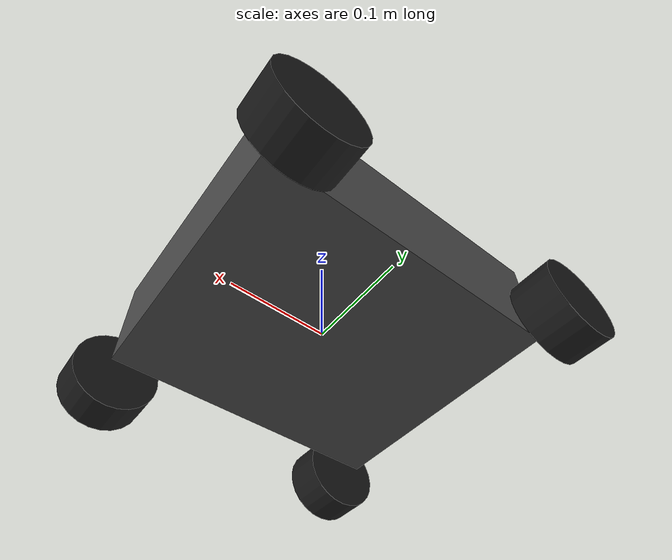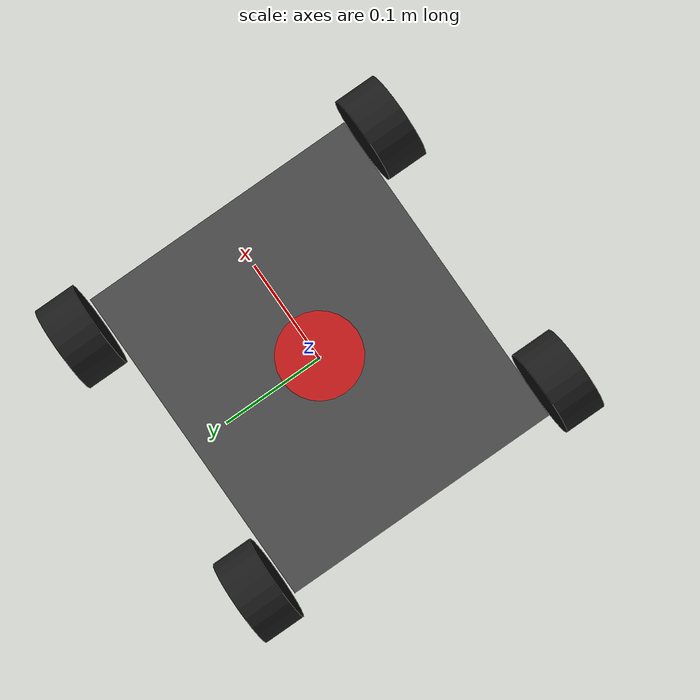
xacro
<?xml version="1.0"?>
<robot xmlns:xacro="http://www.ros.org/wiki/xacro" name="aura">

  <!-- Include sub-xacro files -->
  <xacro:include filename="$(find aura_description)/urdf/materials.xacro"/>
  <xacro:include filename="$(find aura_description)/urdf/wheels.xacro"/>
  <xacro:include filename="$(find aura_description)/urdf/sensors.xacro"/>

  <!-- base_link: virtual reference frame at IMU center              -->
  <link name="base_link"/>

  <!-- chassis_link: the physical robot body                         -->
  <link name="chassis_link">
    <visual>
      <geometry>
        <box size="0.300 0.260 0.100"/>
      </geometry>
      <origin xyz="0 0 0.030" rpy="0 0 0"/>
      <material name="dark_grey"/>
    </visual>
    <collision>
      <geometry>
        <box size="0.300 0.260 0.100"/>
      </geometry>
      <origin xyz="0 0 0.030" rpy="0 0 0"/>
    </collision>
    <inertial>
      <mass value="5.0"/>
      <origin xyz="0 0 0.030" rpy="0 0 0"/>
      <inertia ixx="0.02" ixy="0" ixz="0"
               iyy="0.04" iyz="0"
               izz="0.04"/>
    </inertial>
  </link>

  <joint name="chassis_joint" type="fixed">
    <parent link="base_link"/>
    <child  link="chassis_link"/>
    <origin xyz="0 0 0" rpy="0 0 0"/>
  </joint>

  <!-- Wheels                                                        -->
  <!--   FL: (+0.1385, +0.1635, -0.020)                             -->
  <!--   FR: (+0.1385, -0.1635, -0.020)                             -->
  <!--   RL: (-0.1385, +0.1635, -0.020)                             -->
  <!--   RR: (-0.1385, -0.1635, -0.020)                             -->
  <xacro:wheel name="wheel_fl" x="0.1385"  y="0.1635"  z="-0.020"/>
  <xacro:wheel name="wheel_fr" x="0.1385"  y="-0.1635" z="-0.020"/>
  <xacro:wheel name="wheel_rl" x="-0.1385" y="0.1635"  z="-0.020"/>
  <xacro:wheel name="wheel_rr" x="-0.1385" y="-0.1635" z="-0.020"/>

</robot>

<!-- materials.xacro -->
<robot xmlns:xacro="http://www.ros.org/wiki/xacro">

  <material name="black">
    <color rgba="0.1 0.1 0.1 1.0"/>
  </material>

  <material name="dark_grey">
    <color rgba="0.3 0.3 0.3 1.0"/>
  </material>

  <material name="grey">
    <color rgba="0.5 0.5 0.5 1.0"/>
  </material>

  <material name="blue">
    <color rgba="0.2 0.2 0.8 1.0"/>
  </material>

  <material name="orange">
    <color rgba="1.0 0.5 0.0 1.0"/>
  </material>

  <material name="red">
    <color rgba="0.8 0.1 0.1 1.0"/>
  </material>

</robot>

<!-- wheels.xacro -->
<robot xmlns:xacro="http://www.ros.org/wiki/xacro">

  <!--
    Wheel macro for the AURA 4-wheel robot.
    Wheel radius: 0.0425 m (diameter 0.085 m)
    Wheel width:  0.040 m (approximate)
    Rotation axis: Y (continuous joint)
  -->

  <xacro:property name="wheel_radius" value="0.0425"/>
  <xacro:property name="wheel_width"  value="0.040"/>

  <xacro:macro name="wheel" params="name x y z">
    <link name="${name}_link">
      <visual>
        <geometry>
          <cylinder radius="${wheel_radius}" length="${wheel_width}"/>
        </geometry>
        <!-- Rotate cylinder so its axis aligns with Y (ROS convention) -->
        <origin xyz="0 0 0" rpy="${pi/2} 0 0"/>
        <material name="black"/>
      </visual>
      <collision>
        <geometry>
          <cylinder radius="${wheel_radius}" length="${wheel_width}"/>
        </geometry>
        <origin xyz="0 0 0" rpy="${pi/2} 0 0"/>
      </collision>
      <inertial>
        <mass value="0.3"/>
        <origin xyz="0 0 0" rpy="0 0 0"/>
        <inertia ixx="0.0001" ixy="0" ixz="0"
                 iyy="0.0001" iyz="0"
                 izz="0.0001"/>
      </inertial>
    </link>

    <joint name="${name}_joint" type="continuous">
      <parent link="base_link"/>
      <child  link="${name}_link"/>
      <origin xyz="${x} ${y} ${z}" rpy="0 0 0"/>
      <axis xyz="0 1 0"/>
    </joint>
  </xacro:macro>

</robot>

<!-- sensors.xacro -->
<robot xmlns:xacro="http://www.ros.org/wiki/xacro">

  <!--
    Sensors for the AURA robot.
    base_link is the IMU-center reference frame.
    imu_link:   (0, 0, 0)     relative to base_link
    laser_link: (0, 0, 0.178) relative to base_link
  -->

  <!-- IMU sensor — coincident with base_link -->
  <link name="imu_link"/>

  <joint name="imu_joint" type="fixed">
    <parent link="base_link"/>
    <child  link="imu_link"/>
    <origin xyz="0 0 0" rpy="0 0 0"/>
  </joint>

  <!-- LiDAR sensor — mounted on top of the robot -->
  <link name="laser_link">
    <visual>
      <geometry>
        <cylinder radius="0.035" length="0.040"/>
      </geometry>
      <origin xyz="0 0 0" rpy="0 0 0"/>
      <material name="red"/>
    </visual>
    <collision>
      <geometry>
        <cylinder radius="0.035" length="0.040"/>
      </geometry>
      <origin xyz="0 0 0" rpy="0 0 0"/>
    </collision>
    <inertial>
      <mass value="0.15"/>
      <origin xyz="0 0 0" rpy="0 0 0"/>
      <inertia ixx="0.00005" ixy="0" ixz="0"
               iyy="0.00005" iyz="0"
               izz="0.00005"/>
    </inertial>
  </link>

  <joint name="laser_joint" type="fixed">
    <parent link="base_link"/>
    <child  link="laser_link"/>
    <origin xyz="0 0 0.178" rpy="0 0 0"/>
  </joint>

</robot>
